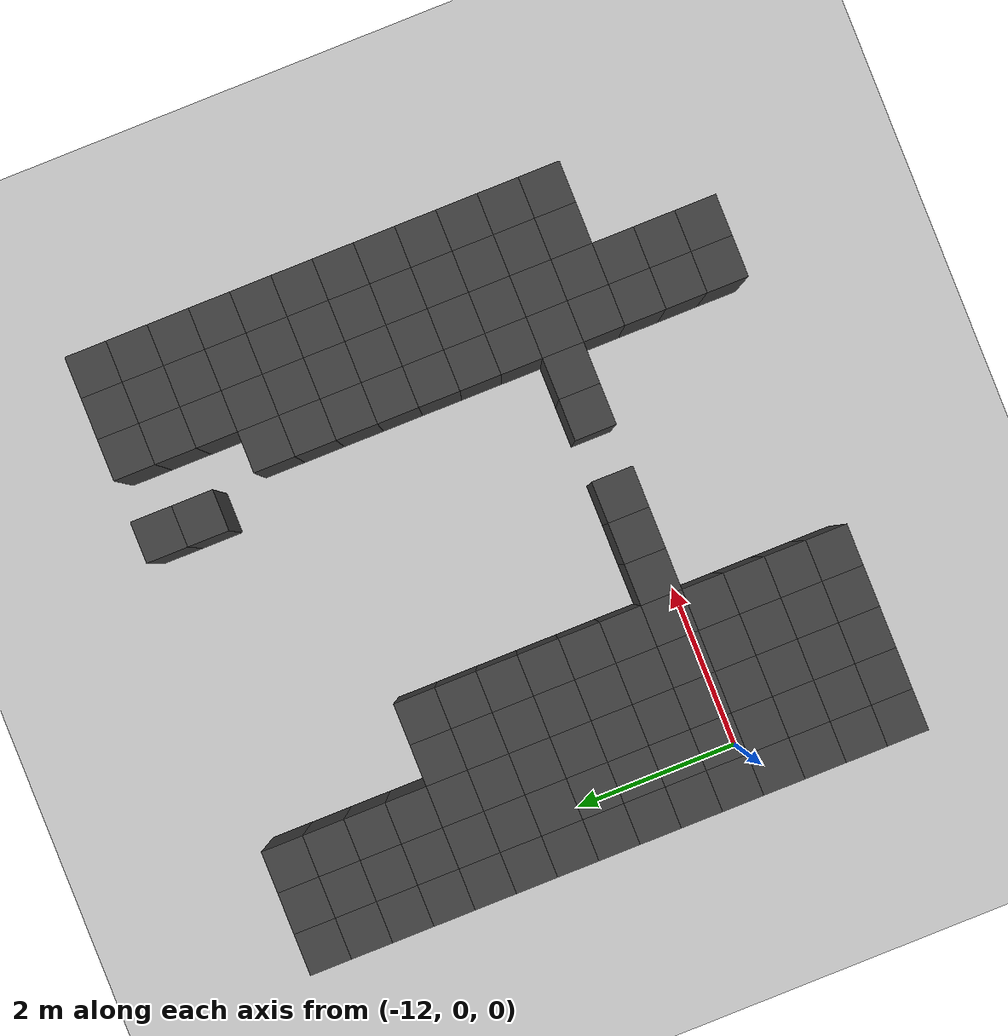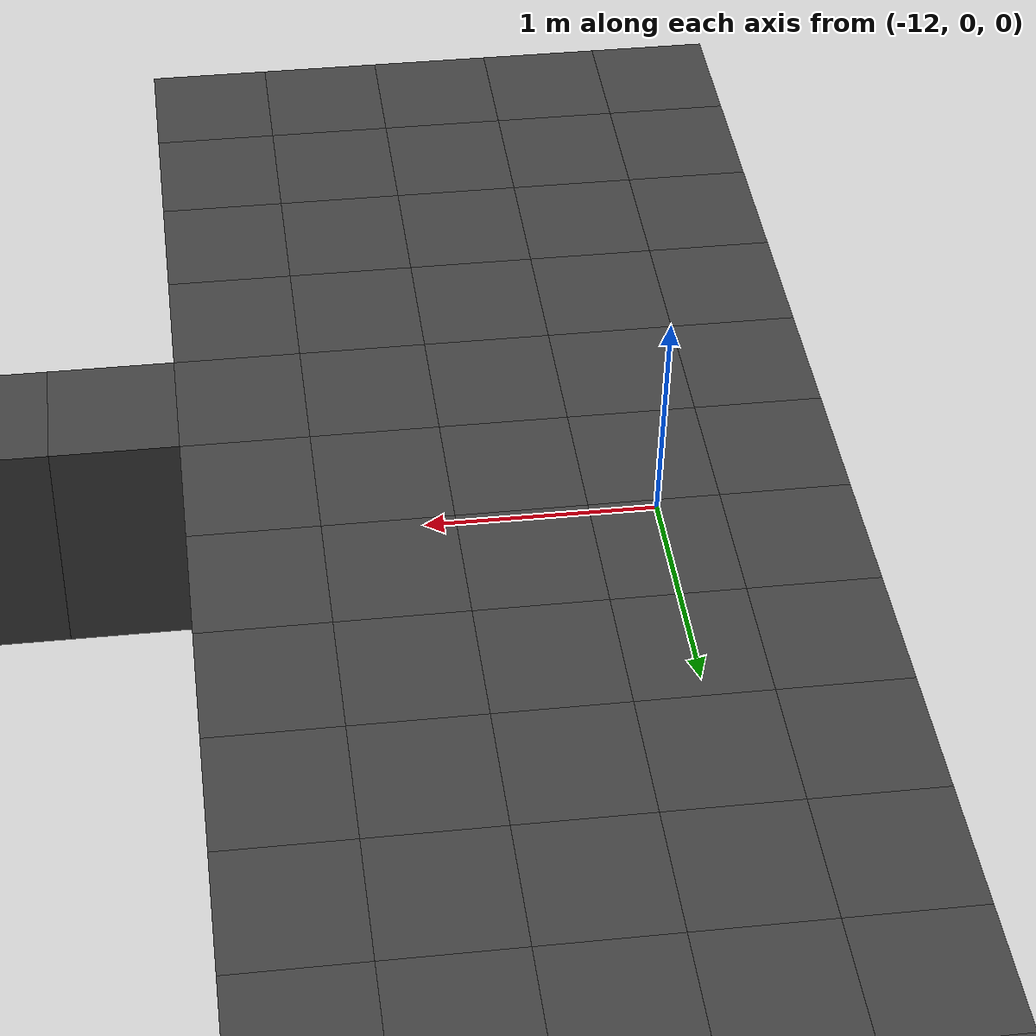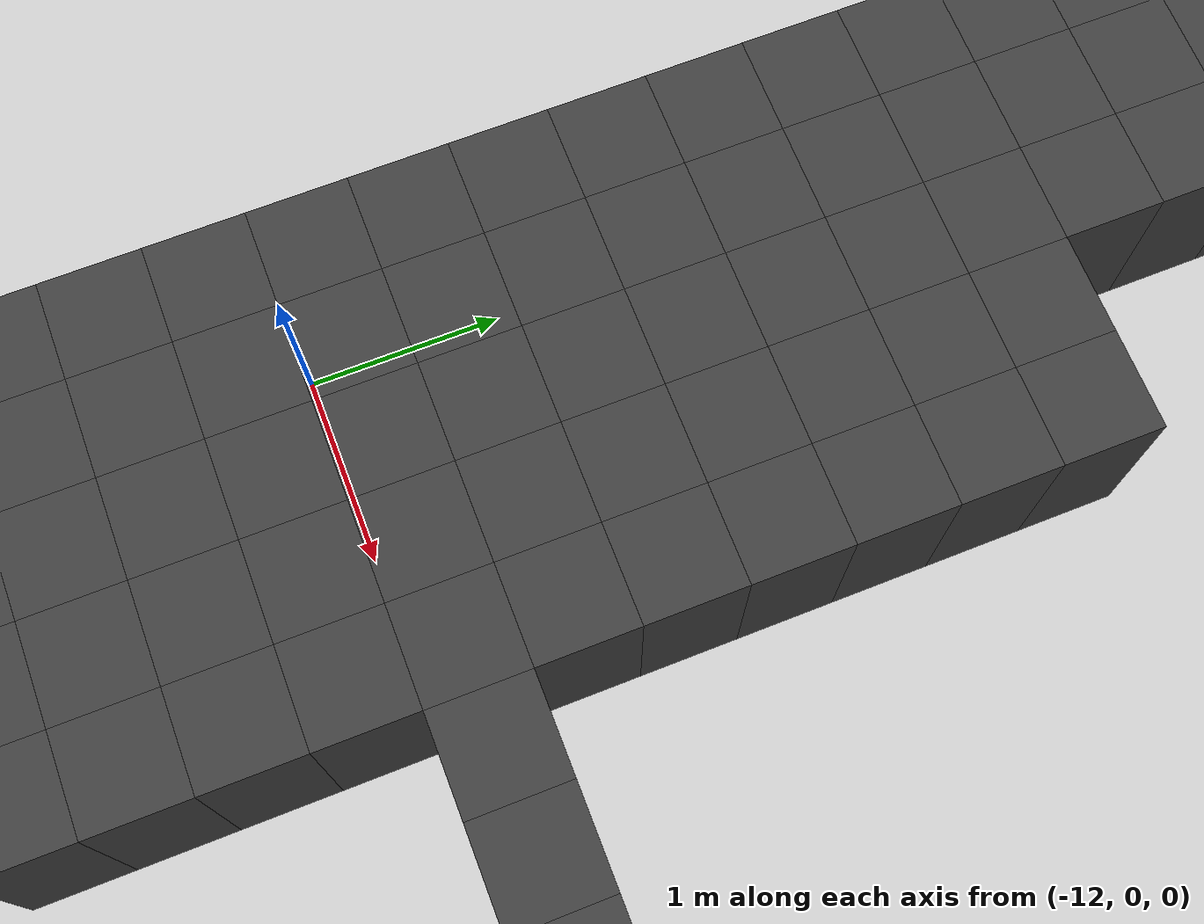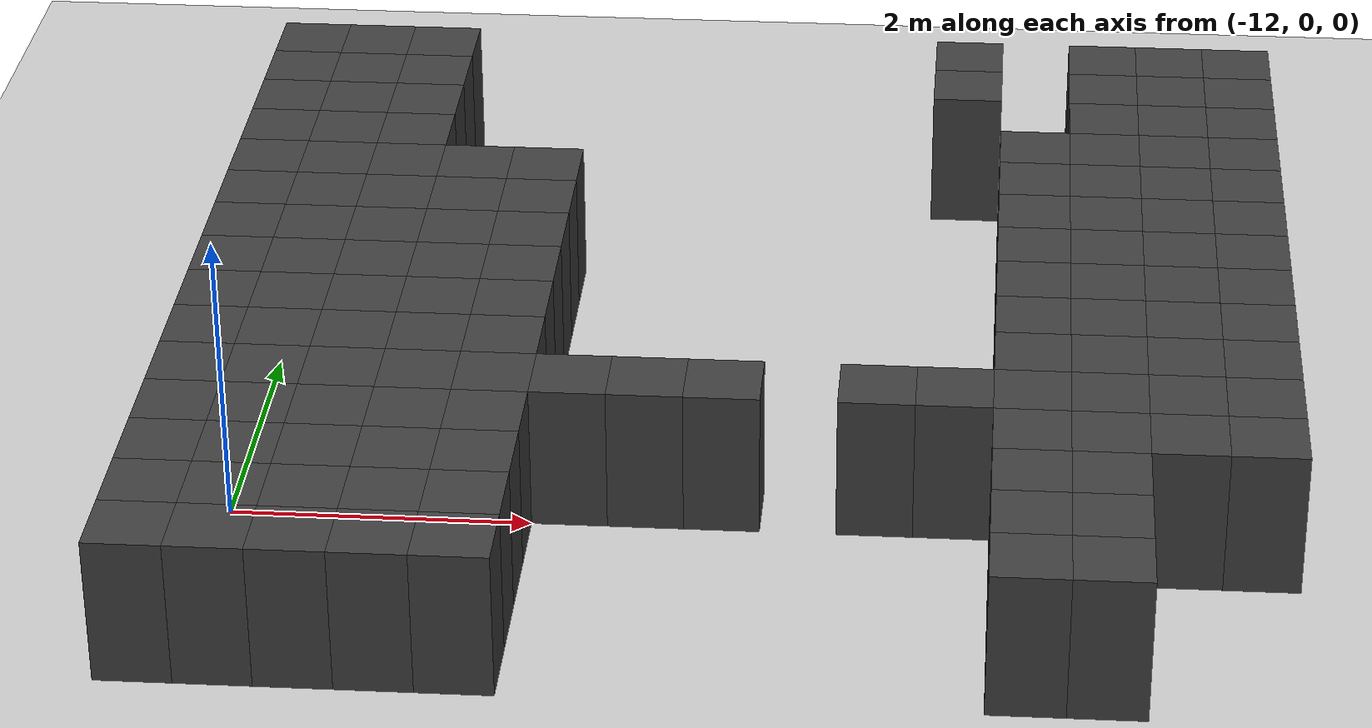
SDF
<sdf version="1.7">
 <world name="map_14495">
  <model name="ground_plane">
   <static>true</static>
   <link name="link">
    <collision name="collision">
     <geometry><plane><normal>0 0 1</normal><size>200 200</size></plane></geometry>
    </collision>
    <visual name="visual">
     <geometry><plane><normal>0 0 1</normal><size>200 200</size></plane></geometry>
     <material><ambient>0.8 0.8 0.8 1</ambient><diffuse>0.8 0.8 0.8 1</diffuse></material>
    </visual>
   </link>
  </model>
  <model name="maze_environment">
   <static>true</static>
   <link name="wall_529">
    <pose>-12.250 5.250 0.500 0 0 0</pose>
    <collision name="col"><geometry><box><size>0.5 0.5 1.0</size></box></geometry></collision>
    <visual name="vis">
     <geometry><box><size>0.5 0.5 1.0</size></box></geometry>
     <material><ambient>0.15 0.15 0.15 1</ambient><diffuse>0.25 0.25 0.25 1</diffuse></material>
    </visual>
   </link>
   <link name="wall_530">
    <pose>-11.750 5.250 0.500 0 0 0</pose>
    <collision name="col"><geometry><box><size>0.5 0.5 1.0</size></box></geometry></collision>
    <visual name="vis">
     <geometry><box><size>0.5 0.5 1.0</size></box></geometry>
     <material><ambient>0.15 0.15 0.15 1</ambient><diffuse>0.25 0.25 0.25 1</diffuse></material>
    </visual>
   </link>
   <link name="wall_531">
    <pose>-11.250 5.250 0.500 0 0 0</pose>
    <collision name="col"><geometry><box><size>0.5 0.5 1.0</size></box></geometry></collision>
    <visual name="vis">
     <geometry><box><size>0.5 0.5 1.0</size></box></geometry>
     <material><ambient>0.15 0.15 0.15 1</ambient><diffuse>0.25 0.25 0.25 1</diffuse></material>
    </visual>
   </link>
   <link name="wall_532">
    <pose>-7.250 5.250 0.500 0 0 0</pose>
    <collision name="col"><geometry><box><size>0.5 0.5 1.0</size></box></geometry></collision>
    <visual name="vis">
     <geometry><box><size>0.5 0.5 1.0</size></box></geometry>
     <material><ambient>0.15 0.15 0.15 1</ambient><diffuse>0.25 0.25 0.25 1</diffuse></material>
    </visual>
   </link>
   <link name="wall_533">
    <pose>-6.250 5.250 0.500 0 0 0</pose>
    <collision name="col"><geometry><box><size>0.5 0.5 1.0</size></box></geometry></collision>
    <visual name="vis">
     <geometry><box><size>0.5 0.5 1.0</size></box></geometry>
     <material><ambient>0.15 0.15 0.15 1</ambient><diffuse>0.25 0.25 0.25 1</diffuse></material>
    </visual>
   </link>
   <link name="wall_534">
    <pose>-5.750 5.250 0.500 0 0 0</pose>
    <collision name="col"><geometry><box><size>0.5 0.5 1.0</size></box></geometry></collision>
    <visual name="vis">
     <geometry><box><size>0.5 0.5 1.0</size></box></geometry>
     <material><ambient>0.15 0.15 0.15 1</ambient><diffuse>0.25 0.25 0.25 1</diffuse></material>
    </visual>
   </link>
   <link name="wall_535">
    <pose>-5.250 5.250 0.500 0 0 0</pose>
    <collision name="col"><geometry><box><size>0.5 0.5 1.0</size></box></geometry></collision>
    <visual name="vis">
     <geometry><box><size>0.5 0.5 1.0</size></box></geometry>
     <material><ambient>0.15 0.15 0.15 1</ambient><diffuse>0.25 0.25 0.25 1</diffuse></material>
    </visual>
   </link>
   <link name="wall_565">
    <pose>-12.250 4.750 0.500 0 0 0</pose>
    <collision name="col"><geometry><box><size>0.5 0.5 1.0</size></box></geometry></collision>
    <visual name="vis">
     <geometry><box><size>0.5 0.5 1.0</size></box></geometry>
     <material><ambient>0.15 0.15 0.15 1</ambient><diffuse>0.25 0.25 0.25 1</diffuse></material>
    </visual>
   </link>
   <link name="wall_566">
    <pose>-11.750 4.750 0.500 0 0 0</pose>
    <collision name="col"><geometry><box><size>0.5 0.5 1.0</size></box></geometry></collision>
    <visual name="vis">
     <geometry><box><size>0.5 0.5 1.0</size></box></geometry>
     <material><ambient>0.15 0.15 0.15 1</ambient><diffuse>0.25 0.25 0.25 1</diffuse></material>
    </visual>
   </link>
   <link name="wall_567">
    <pose>-11.250 4.750 0.500 0 0 0</pose>
    <collision name="col"><geometry><box><size>0.5 0.5 1.0</size></box></geometry></collision>
    <visual name="vis">
     <geometry><box><size>0.5 0.5 1.0</size></box></geometry>
     <material><ambient>0.15 0.15 0.15 1</ambient><diffuse>0.25 0.25 0.25 1</diffuse></material>
    </visual>
   </link>
   <link name="wall_568">
    <pose>-7.250 4.750 0.500 0 0 0</pose>
    <collision name="col"><geometry><box><size>0.5 0.5 1.0</size></box></geometry></collision>
    <visual name="vis">
     <geometry><box><size>0.5 0.5 1.0</size></box></geometry>
     <material><ambient>0.15 0.15 0.15 1</ambient><diffuse>0.25 0.25 0.25 1</diffuse></material>
    </visual>
   </link>
   <link name="wall_569">
    <pose>-6.250 4.750 0.500 0 0 0</pose>
    <collision name="col"><geometry><box><size>0.5 0.5 1.0</size></box></geometry></collision>
    <visual name="vis">
     <geometry><box><size>0.5 0.5 1.0</size></box></geometry>
     <material><ambient>0.15 0.15 0.15 1</ambient><diffuse>0.25 0.25 0.25 1</diffuse></material>
    </visual>
   </link>
   <link name="wall_570">
    <pose>-5.750 4.750 0.500 0 0 0</pose>
    <collision name="col"><geometry><box><size>0.5 0.5 1.0</size></box></geometry></collision>
    <visual name="vis">
     <geometry><box><size>0.5 0.5 1.0</size></box></geometry>
     <material><ambient>0.15 0.15 0.15 1</ambient><diffuse>0.25 0.25 0.25 1</diffuse></material>
    </visual>
   </link>
   <link name="wall_571">
    <pose>-5.250 4.750 0.500 0 0 0</pose>
    <collision name="col"><geometry><box><size>0.5 0.5 1.0</size></box></geometry></collision>
    <visual name="vis">
     <geometry><box><size>0.5 0.5 1.0</size></box></geometry>
     <material><ambient>0.15 0.15 0.15 1</ambient><diffuse>0.25 0.25 0.25 1</diffuse></material>
    </visual>
   </link>
   <link name="wall_598">
    <pose>-12.250 4.250 0.500 0 0 0</pose>
    <collision name="col"><geometry><box><size>0.5 0.5 1.0</size></box></geometry></collision>
    <visual name="vis">
     <geometry><box><size>0.5 0.5 1.0</size></box></geometry>
     <material><ambient>0.15 0.15 0.15 1</ambient><diffuse>0.25 0.25 0.25 1</diffuse></material>
    </visual>
   </link>
   <link name="wall_599">
    <pose>-11.750 4.250 0.500 0 0 0</pose>
    <collision name="col"><geometry><box><size>0.5 0.5 1.0</size></box></geometry></collision>
    <visual name="vis">
     <geometry><box><size>0.5 0.5 1.0</size></box></geometry>
     <material><ambient>0.15 0.15 0.15 1</ambient><diffuse>0.25 0.25 0.25 1</diffuse></material>
    </visual>
   </link>
   <link name="wall_600">
    <pose>-11.250 4.250 0.500 0 0 0</pose>
    <collision name="col"><geometry><box><size>0.5 0.5 1.0</size></box></geometry></collision>
    <visual name="vis">
     <geometry><box><size>0.5 0.5 1.0</size></box></geometry>
     <material><ambient>0.15 0.15 0.15 1</ambient><diffuse>0.25 0.25 0.25 1</diffuse></material>
    </visual>
   </link>
   <link name="wall_601">
    <pose>-6.250 4.250 0.500 0 0 0</pose>
    <collision name="col"><geometry><box><size>0.5 0.5 1.0</size></box></geometry></collision>
    <visual name="vis">
     <geometry><box><size>0.5 0.5 1.0</size></box></geometry>
     <material><ambient>0.15 0.15 0.15 1</ambient><diffuse>0.25 0.25 0.25 1</diffuse></material>
    </visual>
   </link>
   <link name="wall_602">
    <pose>-5.750 4.250 0.500 0 0 0</pose>
    <collision name="col"><geometry><box><size>0.5 0.5 1.0</size></box></geometry></collision>
    <visual name="vis">
     <geometry><box><size>0.5 0.5 1.0</size></box></geometry>
     <material><ambient>0.15 0.15 0.15 1</ambient><diffuse>0.25 0.25 0.25 1</diffuse></material>
    </visual>
   </link>
   <link name="wall_603">
    <pose>-5.250 4.250 0.500 0 0 0</pose>
    <collision name="col"><geometry><box><size>0.5 0.5 1.0</size></box></geometry></collision>
    <visual name="vis">
     <geometry><box><size>0.5 0.5 1.0</size></box></geometry>
     <material><ambient>0.15 0.15 0.15 1</ambient><diffuse>0.25 0.25 0.25 1</diffuse></material>
    </visual>
   </link>
   <link name="wall_634">
    <pose>-12.250 3.750 0.500 0 0 0</pose>
    <collision name="col"><geometry><box><size>0.5 0.5 1.0</size></box></geometry></collision>
    <visual name="vis">
     <geometry><box><size>0.5 0.5 1.0</size></box></geometry>
     <material><ambient>0.15 0.15 0.15 1</ambient><diffuse>0.25 0.25 0.25 1</diffuse></material>
    </visual>
   </link>
   <link name="wall_635">
    <pose>-11.750 3.750 0.500 0 0 0</pose>
    <collision name="col"><geometry><box><size>0.5 0.5 1.0</size></box></geometry></collision>
    <visual name="vis">
     <geometry><box><size>0.5 0.5 1.0</size></box></geometry>
     <material><ambient>0.15 0.15 0.15 1</ambient><diffuse>0.25 0.25 0.25 1</diffuse></material>
    </visual>
   </link>
   <link name="wall_636">
    <pose>-11.250 3.750 0.500 0 0 0</pose>
    <collision name="col"><geometry><box><size>0.5 0.5 1.0</size></box></geometry></collision>
    <visual name="vis">
     <geometry><box><size>0.5 0.5 1.0</size></box></geometry>
     <material><ambient>0.15 0.15 0.15 1</ambient><diffuse>0.25 0.25 0.25 1</diffuse></material>
    </visual>
   </link>
   <link name="wall_637">
    <pose>-6.750 3.750 0.500 0 0 0</pose>
    <collision name="col"><geometry><box><size>0.5 0.5 1.0</size></box></geometry></collision>
    <visual name="vis">
     <geometry><box><size>0.5 0.5 1.0</size></box></geometry>
     <material><ambient>0.15 0.15 0.15 1</ambient><diffuse>0.25 0.25 0.25 1</diffuse></material>
    </visual>
   </link>
   <link name="wall_638">
    <pose>-6.250 3.750 0.500 0 0 0</pose>
    <collision name="col"><geometry><box><size>0.5 0.5 1.0</size></box></geometry></collision>
    <visual name="vis">
     <geometry><box><size>0.5 0.5 1.0</size></box></geometry>
     <material><ambient>0.15 0.15 0.15 1</ambient><diffuse>0.25 0.25 0.25 1</diffuse></material>
    </visual>
   </link>
   <link name="wall_639">
    <pose>-5.750 3.750 0.500 0 0 0</pose>
    <collision name="col"><geometry><box><size>0.5 0.5 1.0</size></box></geometry></collision>
    <visual name="vis">
     <geometry><box><size>0.5 0.5 1.0</size></box></geometry>
     <material><ambient>0.15 0.15 0.15 1</ambient><diffuse>0.25 0.25 0.25 1</diffuse></material>
    </visual>
   </link>
   <link name="wall_640">
    <pose>-5.250 3.750 0.500 0 0 0</pose>
    <collision name="col"><geometry><box><size>0.5 0.5 1.0</size></box></geometry></collision>
    <visual name="vis">
     <geometry><box><size>0.5 0.5 1.0</size></box></geometry>
     <material><ambient>0.15 0.15 0.15 1</ambient><diffuse>0.25 0.25 0.25 1</diffuse></material>
    </visual>
   </link>
   <link name="wall_671">
    <pose>-12.250 3.250 0.500 0 0 0</pose>
    <collision name="col"><geometry><box><size>0.5 0.5 1.0</size></box></geometry></collision>
    <visual name="vis">
     <geometry><box><size>0.5 0.5 1.0</size></box></geometry>
     <material><ambient>0.15 0.15 0.15 1</ambient><diffuse>0.25 0.25 0.25 1</diffuse></material>
    </visual>
   </link>
   <link name="wall_672">
    <pose>-11.750 3.250 0.500 0 0 0</pose>
    <collision name="col"><geometry><box><size>0.5 0.5 1.0</size></box></geometry></collision>
    <visual name="vis">
     <geometry><box><size>0.5 0.5 1.0</size></box></geometry>
     <material><ambient>0.15 0.15 0.15 1</ambient><diffuse>0.25 0.25 0.25 1</diffuse></material>
    </visual>
   </link>
   <link name="wall_673">
    <pose>-11.250 3.250 0.500 0 0 0</pose>
    <collision name="col"><geometry><box><size>0.5 0.5 1.0</size></box></geometry></collision>
    <visual name="vis">
     <geometry><box><size>0.5 0.5 1.0</size></box></geometry>
     <material><ambient>0.15 0.15 0.15 1</ambient><diffuse>0.25 0.25 0.25 1</diffuse></material>
    </visual>
   </link>
   <link name="wall_674">
    <pose>-10.750 3.250 0.500 0 0 0</pose>
    <collision name="col"><geometry><box><size>0.5 0.5 1.0</size></box></geometry></collision>
    <visual name="vis">
     <geometry><box><size>0.5 0.5 1.0</size></box></geometry>
     <material><ambient>0.15 0.15 0.15 1</ambient><diffuse>0.25 0.25 0.25 1</diffuse></material>
    </visual>
   </link>
   <link name="wall_675">
    <pose>-10.250 3.250 0.500 0 0 0</pose>
    <collision name="col"><geometry><box><size>0.5 0.5 1.0</size></box></geometry></collision>
    <visual name="vis">
     <geometry><box><size>0.5 0.5 1.0</size></box></geometry>
     <material><ambient>0.15 0.15 0.15 1</ambient><diffuse>0.25 0.25 0.25 1</diffuse></material>
    </visual>
   </link>
   <link name="wall_676">
    <pose>-6.750 3.250 0.500 0 0 0</pose>
    <collision name="col"><geometry><box><size>0.5 0.5 1.0</size></box></geometry></collision>
    <visual name="vis">
     <geometry><box><size>0.5 0.5 1.0</size></box></geometry>
     <material><ambient>0.15 0.15 0.15 1</ambient><diffuse>0.25 0.25 0.25 1</diffuse></material>
    </visual>
   </link>
   <link name="wall_677">
    <pose>-6.250 3.250 0.500 0 0 0</pose>
    <collision name="col"><geometry><box><size>0.5 0.5 1.0</size></box></geometry></collision>
    <visual name="vis">
     <geometry><box><size>0.5 0.5 1.0</size></box></geometry>
     <material><ambient>0.15 0.15 0.15 1</ambient><diffuse>0.25 0.25 0.25 1</diffuse></material>
    </visual>
   </link>
   <link name="wall_678">
    <pose>-5.750 3.250 0.500 0 0 0</pose>
    <collision name="col"><geometry><box><size>0.5 0.5 1.0</size></box></geometry></collision>
    <visual name="vis">
     <geometry><box><size>0.5 0.5 1.0</size></box></geometry>
     <material><ambient>0.15 0.15 0.15 1</ambient><diffuse>0.25 0.25 0.25 1</diffuse></material>
    </visual>
   </link>
   <link name="wall_679">
    <pose>-5.250 3.250 0.500 0 0 0</pose>
    <collision name="col"><geometry><box><size>0.5 0.5 1.0</size></box></geometry></collision>
    <visual name="vis">
     <geometry><box><size>0.5 0.5 1.0</size></box></geometry>
     <material><ambient>0.15 0.15 0.15 1</ambient><diffuse>0.25 0.25 0.25 1</diffuse></material>
    </visual>
   </link>
   <link name="wall_710">
    <pose>-12.250 2.750 0.500 0 0 0</pose>
    <collision name="col"><geometry><box><size>0.5 0.5 1.0</size></box></geometry></collision>
    <visual name="vis">
     <geometry><box><size>0.5 0.5 1.0</size></box></geometry>
     <material><ambient>0.15 0.15 0.15 1</ambient><diffuse>0.25 0.25 0.25 1</diffuse></material>
    </visual>
   </link>
   <link name="wall_711">
    <pose>-11.750 2.750 0.500 0 0 0</pose>
    <collision name="col"><geometry><box><size>0.5 0.5 1.0</size></box></geometry></collision>
    <visual name="vis">
     <geometry><box><size>0.5 0.5 1.0</size></box></geometry>
     <material><ambient>0.15 0.15 0.15 1</ambient><diffuse>0.25 0.25 0.25 1</diffuse></material>
    </visual>
   </link>
   <link name="wall_712">
    <pose>-11.250 2.750 0.500 0 0 0</pose>
    <collision name="col"><geometry><box><size>0.5 0.5 1.0</size></box></geometry></collision>
    <visual name="vis">
     <geometry><box><size>0.5 0.5 1.0</size></box></geometry>
     <material><ambient>0.15 0.15 0.15 1</ambient><diffuse>0.25 0.25 0.25 1</diffuse></material>
    </visual>
   </link>
   <link name="wall_713">
    <pose>-10.750 2.750 0.500 0 0 0</pose>
    <collision name="col"><geometry><box><size>0.5 0.5 1.0</size></box></geometry></collision>
    <visual name="vis">
     <geometry><box><size>0.5 0.5 1.0</size></box></geometry>
     <material><ambient>0.15 0.15 0.15 1</ambient><diffuse>0.25 0.25 0.25 1</diffuse></material>
    </visual>
   </link>
   <link name="wall_714">
    <pose>-10.250 2.750 0.500 0 0 0</pose>
    <collision name="col"><geometry><box><size>0.5 0.5 1.0</size></box></geometry></collision>
    <visual name="vis">
     <geometry><box><size>0.5 0.5 1.0</size></box></geometry>
     <material><ambient>0.15 0.15 0.15 1</ambient><diffuse>0.25 0.25 0.25 1</diffuse></material>
    </visual>
   </link>
   <link name="wall_715">
    <pose>-6.750 2.750 0.500 0 0 0</pose>
    <collision name="col"><geometry><box><size>0.5 0.5 1.0</size></box></geometry></collision>
    <visual name="vis">
     <geometry><box><size>0.5 0.5 1.0</size></box></geometry>
     <material><ambient>0.15 0.15 0.15 1</ambient><diffuse>0.25 0.25 0.25 1</diffuse></material>
    </visual>
   </link>
   <link name="wall_716">
    <pose>-6.250 2.750 0.500 0 0 0</pose>
    <collision name="col"><geometry><box><size>0.5 0.5 1.0</size></box></geometry></collision>
    <visual name="vis">
     <geometry><box><size>0.5 0.5 1.0</size></box></geometry>
     <material><ambient>0.15 0.15 0.15 1</ambient><diffuse>0.25 0.25 0.25 1</diffuse></material>
    </visual>
   </link>
   <link name="wall_717">
    <pose>-5.750 2.750 0.500 0 0 0</pose>
    <collision name="col"><geometry><box><size>0.5 0.5 1.0</size></box></geometry></collision>
    <visual name="vis">
     <geometry><box><size>0.5 0.5 1.0</size></box></geometry>
     <material><ambient>0.15 0.15 0.15 1</ambient><diffuse>0.25 0.25 0.25 1</diffuse></material>
    </visual>
   </link>
   <link name="wall_718">
    <pose>-5.250 2.750 0.500 0 0 0</pose>
    <collision name="col"><geometry><box><size>0.5 0.5 1.0</size></box></geometry></collision>
    <visual name="vis">
     <geometry><box><size>0.5 0.5 1.0</size></box></geometry>
     <material><ambient>0.15 0.15 0.15 1</ambient><diffuse>0.25 0.25 0.25 1</diffuse></material>
    </visual>
   </link>
   <link name="wall_754">
    <pose>-12.250 2.250 0.500 0 0 0</pose>
    <collision name="col"><geometry><box><size>0.5 0.5 1.0</size></box></geometry></collision>
    <visual name="vis">
     <geometry><box><size>0.5 0.5 1.0</size></box></geometry>
     <material><ambient>0.15 0.15 0.15 1</ambient><diffuse>0.25 0.25 0.25 1</diffuse></material>
    </visual>
   </link>
   <link name="wall_755">
    <pose>-11.750 2.250 0.500 0 0 0</pose>
    <collision name="col"><geometry><box><size>0.5 0.5 1.0</size></box></geometry></collision>
    <visual name="vis">
     <geometry><box><size>0.5 0.5 1.0</size></box></geometry>
     <material><ambient>0.15 0.15 0.15 1</ambient><diffuse>0.25 0.25 0.25 1</diffuse></material>
    </visual>
   </link>
   <link name="wall_756">
    <pose>-11.250 2.250 0.500 0 0 0</pose>
    <collision name="col"><geometry><box><size>0.5 0.5 1.0</size></box></geometry></collision>
    <visual name="vis">
     <geometry><box><size>0.5 0.5 1.0</size></box></geometry>
     <material><ambient>0.15 0.15 0.15 1</ambient><diffuse>0.25 0.25 0.25 1</diffuse></material>
    </visual>
   </link>
   <link name="wall_757">
    <pose>-10.750 2.250 0.500 0 0 0</pose>
    <collision name="col"><geometry><box><size>0.5 0.5 1.0</size></box></geometry></collision>
    <visual name="vis">
     <geometry><box><size>0.5 0.5 1.0</size></box></geometry>
     <material><ambient>0.15 0.15 0.15 1</ambient><diffuse>0.25 0.25 0.25 1</diffuse></material>
    </visual>
   </link>
   <link name="wall_758">
    <pose>-10.250 2.250 0.500 0 0 0</pose>
    <collision name="col"><geometry><box><size>0.5 0.5 1.0</size></box></geometry></collision>
    <visual name="vis">
     <geometry><box><size>0.5 0.5 1.0</size></box></geometry>
     <material><ambient>0.15 0.15 0.15 1</ambient><diffuse>0.25 0.25 0.25 1</diffuse></material>
    </visual>
   </link>
   <link name="wall_759">
    <pose>-6.750 2.250 0.500 0 0 0</pose>
    <collision name="col"><geometry><box><size>0.5 0.5 1.0</size></box></geometry></collision>
    <visual name="vis">
     <geometry><box><size>0.5 0.5 1.0</size></box></geometry>
     <material><ambient>0.15 0.15 0.15 1</ambient><diffuse>0.25 0.25 0.25 1</diffuse></material>
    </visual>
   </link>
   <link name="wall_760">
    <pose>-6.250 2.250 0.500 0 0 0</pose>
    <collision name="col"><geometry><box><size>0.5 0.5 1.0</size></box></geometry></collision>
    <visual name="vis">
     <geometry><box><size>0.5 0.5 1.0</size></box></geometry>
     <material><ambient>0.15 0.15 0.15 1</ambient><diffuse>0.25 0.25 0.25 1</diffuse></material>
    </visual>
   </link>
   <link name="wall_761">
    <pose>-5.750 2.250 0.500 0 0 0</pose>
    <collision name="col"><geometry><box><size>0.5 0.5 1.0</size></box></geometry></collision>
    <visual name="vis">
     <geometry><box><size>0.5 0.5 1.0</size></box></geometry>
     <material><ambient>0.15 0.15 0.15 1</ambient><diffuse>0.25 0.25 0.25 1</diffuse></material>
    </visual>
   </link>
   <link name="wall_762">
    <pose>-5.250 2.250 0.500 0 0 0</pose>
    <collision name="col"><geometry><box><size>0.5 0.5 1.0</size></box></geometry></collision>
    <visual name="vis">
     <geometry><box><size>0.5 0.5 1.0</size></box></geometry>
     <material><ambient>0.15 0.15 0.15 1</ambient><diffuse>0.25 0.25 0.25 1</diffuse></material>
    </visual>
   </link>
   <link name="wall_798">
    <pose>-12.250 1.750 0.500 0 0 0</pose>
    <collision name="col"><geometry><box><size>0.5 0.5 1.0</size></box></geometry></collision>
    <visual name="vis">
     <geometry><box><size>0.5 0.5 1.0</size></box></geometry>
     <material><ambient>0.15 0.15 0.15 1</ambient><diffuse>0.25 0.25 0.25 1</diffuse></material>
    </visual>
   </link>
   <link name="wall_799">
    <pose>-11.750 1.750 0.500 0 0 0</pose>
    <collision name="col"><geometry><box><size>0.5 0.5 1.0</size></box></geometry></collision>
    <visual name="vis">
     <geometry><box><size>0.5 0.5 1.0</size></box></geometry>
     <material><ambient>0.15 0.15 0.15 1</ambient><diffuse>0.25 0.25 0.25 1</diffuse></material>
    </visual>
   </link>
   <link name="wall_800">
    <pose>-11.250 1.750 0.500 0 0 0</pose>
    <collision name="col"><geometry><box><size>0.5 0.5 1.0</size></box></geometry></collision>
    <visual name="vis">
     <geometry><box><size>0.5 0.5 1.0</size></box></geometry>
     <material><ambient>0.15 0.15 0.15 1</ambient><diffuse>0.25 0.25 0.25 1</diffuse></material>
    </visual>
   </link>
   <link name="wall_801">
    <pose>-10.750 1.750 0.500 0 0 0</pose>
    <collision name="col"><geometry><box><size>0.5 0.5 1.0</size></box></geometry></collision>
    <visual name="vis">
     <geometry><box><size>0.5 0.5 1.0</size></box></geometry>
     <material><ambient>0.15 0.15 0.15 1</ambient><diffuse>0.25 0.25 0.25 1</diffuse></material>
    </visual>
   </link>
   <link name="wall_802">
    <pose>-10.250 1.750 0.500 0 0 0</pose>
    <collision name="col"><geometry><box><size>0.5 0.5 1.0</size></box></geometry></collision>
    <visual name="vis">
     <geometry><box><size>0.5 0.5 1.0</size></box></geometry>
     <material><ambient>0.15 0.15 0.15 1</ambient><diffuse>0.25 0.25 0.25 1</diffuse></material>
    </visual>
   </link>
   <link name="wall_803">
    <pose>-6.750 1.750 0.500 0 0 0</pose>
    <collision name="col"><geometry><box><size>0.5 0.5 1.0</size></box></geometry></collision>
    <visual name="vis">
     <geometry><box><size>0.5 0.5 1.0</size></box></geometry>
     <material><ambient>0.15 0.15 0.15 1</ambient><diffuse>0.25 0.25 0.25 1</diffuse></material>
    </visual>
   </link>
   <link name="wall_804">
    <pose>-6.250 1.750 0.500 0 0 0</pose>
    <collision name="col"><geometry><box><size>0.5 0.5 1.0</size></box></geometry></collision>
    <visual name="vis">
     <geometry><box><size>0.5 0.5 1.0</size></box></geometry>
     <material><ambient>0.15 0.15 0.15 1</ambient><diffuse>0.25 0.25 0.25 1</diffuse></material>
    </visual>
   </link>
   <link name="wall_805">
    <pose>-5.750 1.750 0.500 0 0 0</pose>
    <collision name="col"><geometry><box><size>0.5 0.5 1.0</size></box></geometry></collision>
    <visual name="vis">
     <geometry><box><size>0.5 0.5 1.0</size></box></geometry>
     <material><ambient>0.15 0.15 0.15 1</ambient><diffuse>0.25 0.25 0.25 1</diffuse></material>
    </visual>
   </link>
   <link name="wall_806">
    <pose>-5.250 1.750 0.500 0 0 0</pose>
    <collision name="col"><geometry><box><size>0.5 0.5 1.0</size></box></geometry></collision>
    <visual name="vis">
     <geometry><box><size>0.5 0.5 1.0</size></box></geometry>
     <material><ambient>0.15 0.15 0.15 1</ambient><diffuse>0.25 0.25 0.25 1</diffuse></material>
    </visual>
   </link>
   <link name="wall_832">
    <pose>-12.250 1.250 0.500 0 0 0</pose>
    <collision name="col"><geometry><box><size>0.5 0.5 1.0</size></box></geometry></collision>
    <visual name="vis">
     <geometry><box><size>0.5 0.5 1.0</size></box></geometry>
     <material><ambient>0.15 0.15 0.15 1</ambient><diffuse>0.25 0.25 0.25 1</diffuse></material>
    </visual>
   </link>
   <link name="wall_833">
    <pose>-11.750 1.250 0.500 0 0 0</pose>
    <collision name="col"><geometry><box><size>0.5 0.5 1.0</size></box></geometry></collision>
    <visual name="vis">
     <geometry><box><size>0.5 0.5 1.0</size></box></geometry>
     <material><ambient>0.15 0.15 0.15 1</ambient><diffuse>0.25 0.25 0.25 1</diffuse></material>
    </visual>
   </link>
   <link name="wall_834">
    <pose>-11.250 1.250 0.500 0 0 0</pose>
    <collision name="col"><geometry><box><size>0.5 0.5 1.0</size></box></geometry></collision>
    <visual name="vis">
     <geometry><box><size>0.5 0.5 1.0</size></box></geometry>
     <material><ambient>0.15 0.15 0.15 1</ambient><diffuse>0.25 0.25 0.25 1</diffuse></material>
    </visual>
   </link>
   <link name="wall_835">
    <pose>-10.750 1.250 0.500 0 0 0</pose>
    <collision name="col"><geometry><box><size>0.5 0.5 1.0</size></box></geometry></collision>
    <visual name="vis">
     <geometry><box><size>0.5 0.5 1.0</size></box></geometry>
     <material><ambient>0.15 0.15 0.15 1</ambient><diffuse>0.25 0.25 0.25 1</diffuse></material>
    </visual>
   </link>
   <link name="wall_836">
    <pose>-10.250 1.250 0.500 0 0 0</pose>
    <collision name="col"><geometry><box><size>0.5 0.5 1.0</size></box></geometry></collision>
    <visual name="vis">
     <geometry><box><size>0.5 0.5 1.0</size></box></geometry>
     <material><ambient>0.15 0.15 0.15 1</ambient><diffuse>0.25 0.25 0.25 1</diffuse></material>
    </visual>
   </link>
   <link name="wall_837">
    <pose>-6.750 1.250 0.500 0 0 0</pose>
    <collision name="col"><geometry><box><size>0.5 0.5 1.0</size></box></geometry></collision>
    <visual name="vis">
     <geometry><box><size>0.5 0.5 1.0</size></box></geometry>
     <material><ambient>0.15 0.15 0.15 1</ambient><diffuse>0.25 0.25 0.25 1</diffuse></material>
    </visual>
   </link>
   <link name="wall_838">
    <pose>-6.250 1.250 0.500 0 0 0</pose>
    <collision name="col"><geometry><box><size>0.5 0.5 1.0</size></box></geometry></collision>
    <visual name="vis">
     <geometry><box><size>0.5 0.5 1.0</size></box></geometry>
     <material><ambient>0.15 0.15 0.15 1</ambient><diffuse>0.25 0.25 0.25 1</diffuse></material>
    </visual>
   </link>
   <link name="wall_839">
    <pose>-5.750 1.250 0.500 0 0 0</pose>
    <collision name="col"><geometry><box><size>0.5 0.5 1.0</size></box></geometry></collision>
    <visual name="vis">
     <geometry><box><size>0.5 0.5 1.0</size></box></geometry>
     <material><ambient>0.15 0.15 0.15 1</ambient><diffuse>0.25 0.25 0.25 1</diffuse></material>
    </visual>
   </link>
   <link name="wall_840">
    <pose>-5.250 1.250 0.500 0 0 0</pose>
    <collision name="col"><geometry><box><size>0.5 0.5 1.0</size></box></geometry></collision>
    <visual name="vis">
     <geometry><box><size>0.5 0.5 1.0</size></box></geometry>
     <material><ambient>0.15 0.15 0.15 1</ambient><diffuse>0.25 0.25 0.25 1</diffuse></material>
    </visual>
   </link>
   <link name="wall_866">
    <pose>-12.250 0.750 0.500 0 0 0</pose>
    <collision name="col"><geometry><box><size>0.5 0.5 1.0</size></box></geometry></collision>
    <visual name="vis">
     <geometry><box><size>0.5 0.5 1.0</size></box></geometry>
     <material><ambient>0.15 0.15 0.15 1</ambient><diffuse>0.25 0.25 0.25 1</diffuse></material>
    </visual>
   </link>
   <link name="wall_867">
    <pose>-11.750 0.750 0.500 0 0 0</pose>
    <collision name="col"><geometry><box><size>0.5 0.5 1.0</size></box></geometry></collision>
    <visual name="vis">
     <geometry><box><size>0.5 0.5 1.0</size></box></geometry>
     <material><ambient>0.15 0.15 0.15 1</ambient><diffuse>0.25 0.25 0.25 1</diffuse></material>
    </visual>
   </link>
   <link name="wall_868">
    <pose>-11.250 0.750 0.500 0 0 0</pose>
    <collision name="col"><geometry><box><size>0.5 0.5 1.0</size></box></geometry></collision>
    <visual name="vis">
     <geometry><box><size>0.5 0.5 1.0</size></box></geometry>
     <material><ambient>0.15 0.15 0.15 1</ambient><diffuse>0.25 0.25 0.25 1</diffuse></material>
    </visual>
   </link>
   <link name="wall_869">
    <pose>-10.750 0.750 0.500 0 0 0</pose>
    <collision name="col"><geometry><box><size>0.5 0.5 1.0</size></box></geometry></collision>
    <visual name="vis">
     <geometry><box><size>0.5 0.5 1.0</size></box></geometry>
     <material><ambient>0.15 0.15 0.15 1</ambient><diffuse>0.25 0.25 0.25 1</diffuse></material>
    </visual>
   </link>
   <link name="wall_870">
    <pose>-10.250 0.750 0.500 0 0 0</pose>
    <collision name="col"><geometry><box><size>0.5 0.5 1.0</size></box></geometry></collision>
    <visual name="vis">
     <geometry><box><size>0.5 0.5 1.0</size></box></geometry>
     <material><ambient>0.15 0.15 0.15 1</ambient><diffuse>0.25 0.25 0.25 1</diffuse></material>
    </visual>
   </link>
   <link name="wall_871">
    <pose>-6.750 0.750 0.500 0 0 0</pose>
    <collision name="col"><geometry><box><size>0.5 0.5 1.0</size></box></geometry></collision>
    <visual name="vis">
     <geometry><box><size>0.5 0.5 1.0</size></box></geometry>
     <material><ambient>0.15 0.15 0.15 1</ambient><diffuse>0.25 0.25 0.25 1</diffuse></material>
    </visual>
   </link>
   <link name="wall_872">
    <pose>-6.250 0.750 0.500 0 0 0</pose>
    <collision name="col"><geometry><box><size>0.5 0.5 1.0</size></box></geometry></collision>
    <visual name="vis">
     <geometry><box><size>0.5 0.5 1.0</size></box></geometry>
     <material><ambient>0.15 0.15 0.15 1</ambient><diffuse>0.25 0.25 0.25 1</diffuse></material>
    </visual>
   </link>
   <link name="wall_873">
    <pose>-5.750 0.750 0.500 0 0 0</pose>
    <collision name="col"><geometry><box><size>0.5 0.5 1.0</size></box></geometry></collision>
    <visual name="vis">
     <geometry><box><size>0.5 0.5 1.0</size></box></geometry>
     <material><ambient>0.15 0.15 0.15 1</ambient><diffuse>0.25 0.25 0.25 1</diffuse></material>
    </visual>
   </link>
   <link name="wall_874">
    <pose>-5.250 0.750 0.500 0 0 0</pose>
    <collision name="col"><geometry><box><size>0.5 0.5 1.0</size></box></geometry></collision>
    <visual name="vis">
     <geometry><box><size>0.5 0.5 1.0</size></box></geometry>
     <material><ambient>0.15 0.15 0.15 1</ambient><diffuse>0.25 0.25 0.25 1</diffuse></material>
    </visual>
   </link>
   <link name="wall_900">
    <pose>-12.250 0.250 0.500 0 0 0</pose>
    <collision name="col"><geometry><box><size>0.5 0.5 1.0</size></box></geometry></collision>
    <visual name="vis">
     <geometry><box><size>0.5 0.5 1.0</size></box></geometry>
     <material><ambient>0.15 0.15 0.15 1</ambient><diffuse>0.25 0.25 0.25 1</diffuse></material>
    </visual>
   </link>
   <link name="wall_901">
    <pose>-11.750 0.250 0.500 0 0 0</pose>
    <collision name="col"><geometry><box><size>0.5 0.5 1.0</size></box></geometry></collision>
    <visual name="vis">
     <geometry><box><size>0.5 0.5 1.0</size></box></geometry>
     <material><ambient>0.15 0.15 0.15 1</ambient><diffuse>0.25 0.25 0.25 1</diffuse></material>
    </visual>
   </link>
   <link name="wall_902">
    <pose>-11.250 0.250 0.500 0 0 0</pose>
    <collision name="col"><geometry><box><size>0.5 0.5 1.0</size></box></geometry></collision>
    <visual name="vis">
     <geometry><box><size>0.5 0.5 1.0</size></box></geometry>
     <material><ambient>0.15 0.15 0.15 1</ambient><diffuse>0.25 0.25 0.25 1</diffuse></material>
    </visual>
   </link>
   <link name="wall_903">
    <pose>-10.750 0.250 0.500 0 0 0</pose>
    <collision name="col"><geometry><box><size>0.5 0.5 1.0</size></box></geometry></collision>
    <visual name="vis">
     <geometry><box><size>0.5 0.5 1.0</size></box></geometry>
     <material><ambient>0.15 0.15 0.15 1</ambient><diffuse>0.25 0.25 0.25 1</diffuse></material>
    </visual>
   </link>
   <link name="wall_904">
    <pose>-10.250 0.250 0.500 0 0 0</pose>
    <collision name="col"><geometry><box><size>0.5 0.5 1.0</size></box></geometry></collision>
    <visual name="vis">
     <geometry><box><size>0.5 0.5 1.0</size></box></geometry>
     <material><ambient>0.15 0.15 0.15 1</ambient><diffuse>0.25 0.25 0.25 1</diffuse></material>
    </visual>
   </link>
   <link name="wall_905">
    <pose>-9.750 0.250 0.500 0 0 0</pose>
    <collision name="col"><geometry><box><size>0.5 0.5 1.0</size></box></geometry></collision>
    <visual name="vis">
     <geometry><box><size>0.5 0.5 1.0</size></box></geometry>
     <material><ambient>0.15 0.15 0.15 1</ambient><diffuse>0.25 0.25 0.25 1</diffuse></material>
    </visual>
   </link>
   <link name="wall_906">
    <pose>-9.250 0.250 0.500 0 0 0</pose>
    <collision name="col"><geometry><box><size>0.5 0.5 1.0</size></box></geometry></collision>
    <visual name="vis">
     <geometry><box><size>0.5 0.5 1.0</size></box></geometry>
     <material><ambient>0.15 0.15 0.15 1</ambient><diffuse>0.25 0.25 0.25 1</diffuse></material>
    </visual>
   </link>
   <link name="wall_907">
    <pose>-8.750 0.250 0.500 0 0 0</pose>
    <collision name="col"><geometry><box><size>0.5 0.5 1.0</size></box></geometry></collision>
    <visual name="vis">
     <geometry><box><size>0.5 0.5 1.0</size></box></geometry>
     <material><ambient>0.15 0.15 0.15 1</ambient><diffuse>0.25 0.25 0.25 1</diffuse></material>
    </visual>
   </link>
   <link name="wall_908">
    <pose>-7.750 0.250 0.500 0 0 0</pose>
    <collision name="col"><geometry><box><size>0.5 0.5 1.0</size></box></geometry></collision>
    <visual name="vis">
     <geometry><box><size>0.5 0.5 1.0</size></box></geometry>
     <material><ambient>0.15 0.15 0.15 1</ambient><diffuse>0.25 0.25 0.25 1</diffuse></material>
    </visual>
   </link>
   <link name="wall_909">
    <pose>-7.250 0.250 0.500 0 0 0</pose>
    <collision name="col"><geometry><box><size>0.5 0.5 1.0</size></box></geometry></collision>
    <visual name="vis">
     <geometry><box><size>0.5 0.5 1.0</size></box></geometry>
     <material><ambient>0.15 0.15 0.15 1</ambient><diffuse>0.25 0.25 0.25 1</diffuse></material>
    </visual>
   </link>
   <link name="wall_910">
    <pose>-6.750 0.250 0.500 0 0 0</pose>
    <collision name="col"><geometry><box><size>0.5 0.5 1.0</size></box></geometry></collision>
    <visual name="vis">
     <geometry><box><size>0.5 0.5 1.0</size></box></geometry>
     <material><ambient>0.15 0.15 0.15 1</ambient><diffuse>0.25 0.25 0.25 1</diffuse></material>
    </visual>
   </link>
   <link name="wall_911">
    <pose>-6.250 0.250 0.500 0 0 0</pose>
    <collision name="col"><geometry><box><size>0.5 0.5 1.0</size></box></geometry></collision>
    <visual name="vis">
     <geometry><box><size>0.5 0.5 1.0</size></box></geometry>
     <material><ambient>0.15 0.15 0.15 1</ambient><diffuse>0.25 0.25 0.25 1</diffuse></material>
    </visual>
   </link>
   <link name="wall_912">
    <pose>-5.750 0.250 0.500 0 0 0</pose>
    <collision name="col"><geometry><box><size>0.5 0.5 1.0</size></box></geometry></collision>
    <visual name="vis">
     <geometry><box><size>0.5 0.5 1.0</size></box></geometry>
     <material><ambient>0.15 0.15 0.15 1</ambient><diffuse>0.25 0.25 0.25 1</diffuse></material>
    </visual>
   </link>
   <link name="wall_913">
    <pose>-5.250 0.250 0.500 0 0 0</pose>
    <collision name="col"><geometry><box><size>0.5 0.5 1.0</size></box></geometry></collision>
    <visual name="vis">
     <geometry><box><size>0.5 0.5 1.0</size></box></geometry>
     <material><ambient>0.15 0.15 0.15 1</ambient><diffuse>0.25 0.25 0.25 1</diffuse></material>
    </visual>
   </link>
   <link name="wall_939">
    <pose>-12.250 -0.250 0.500 0 0 0</pose>
    <collision name="col"><geometry><box><size>0.5 0.5 1.0</size></box></geometry></collision>
    <visual name="vis">
     <geometry><box><size>0.5 0.5 1.0</size></box></geometry>
     <material><ambient>0.15 0.15 0.15 1</ambient><diffuse>0.25 0.25 0.25 1</diffuse></material>
    </visual>
   </link>
   <link name="wall_940">
    <pose>-11.750 -0.250 0.500 0 0 0</pose>
    <collision name="col"><geometry><box><size>0.5 0.5 1.0</size></box></geometry></collision>
    <visual name="vis">
     <geometry><box><size>0.5 0.5 1.0</size></box></geometry>
     <material><ambient>0.15 0.15 0.15 1</ambient><diffuse>0.25 0.25 0.25 1</diffuse></material>
    </visual>
   </link>
   <link name="wall_941">
    <pose>-11.250 -0.250 0.500 0 0 0</pose>
    <collision name="col"><geometry><box><size>0.5 0.5 1.0</size></box></geometry></collision>
    <visual name="vis">
     <geometry><box><size>0.5 0.5 1.0</size></box></geometry>
     <material><ambient>0.15 0.15 0.15 1</ambient><diffuse>0.25 0.25 0.25 1</diffuse></material>
    </visual>
   </link>
   <link name="wall_942">
    <pose>-10.750 -0.250 0.500 0 0 0</pose>
    <collision name="col"><geometry><box><size>0.5 0.5 1.0</size></box></geometry></collision>
    <visual name="vis">
     <geometry><box><size>0.5 0.5 1.0</size></box></geometry>
     <material><ambient>0.15 0.15 0.15 1</ambient><diffuse>0.25 0.25 0.25 1</diffuse></material>
    </visual>
   </link>
   <link name="wall_943">
    <pose>-10.250 -0.250 0.500 0 0 0</pose>
    <collision name="col"><geometry><box><size>0.5 0.5 1.0</size></box></geometry></collision>
    <visual name="vis">
     <geometry><box><size>0.5 0.5 1.0</size></box></geometry>
     <material><ambient>0.15 0.15 0.15 1</ambient><diffuse>0.25 0.25 0.25 1</diffuse></material>
    </visual>
   </link>
   <link name="wall_944">
    <pose>-6.750 -0.250 0.500 0 0 0</pose>
    <collision name="col"><geometry><box><size>0.5 0.5 1.0</size></box></geometry></collision>
    <visual name="vis">
     <geometry><box><size>0.5 0.5 1.0</size></box></geometry>
     <material><ambient>0.15 0.15 0.15 1</ambient><diffuse>0.25 0.25 0.25 1</diffuse></material>
    </visual>
   </link>
   <link name="wall_945">
    <pose>-6.250 -0.250 0.500 0 0 0</pose>
    <collision name="col"><geometry><box><size>0.5 0.5 1.0</size></box></geometry></collision>
    <visual name="vis">
     <geometry><box><size>0.5 0.5 1.0</size></box></geometry>
     <material><ambient>0.15 0.15 0.15 1</ambient><diffuse>0.25 0.25 0.25 1</diffuse></material>
    </visual>
   </link>
   <link name="wall_946">
    <pose>-5.750 -0.250 0.500 0 0 0</pose>
    <collision name="col"><geometry><box><size>0.5 0.5 1.0</size></box></geometry></collision>
    <visual name="vis">
     <geometry><box><size>0.5 0.5 1.0</size></box></geometry>
     <material><ambient>0.15 0.15 0.15 1</ambient><diffuse>0.25 0.25 0.25 1</diffuse></material>
    </visual>
   </link>
   <link name="wall_947">
    <pose>-5.250 -0.250 0.500 0 0 0</pose>
    <collision name="col"><geometry><box><size>0.5 0.5 1.0</size></box></geometry></collision>
    <visual name="vis">
     <geometry><box><size>0.5 0.5 1.0</size></box></geometry>
     <material><ambient>0.15 0.15 0.15 1</ambient><diffuse>0.25 0.25 0.25 1</diffuse></material>
    </visual>
   </link>
   <link name="wall_968">
    <pose>-12.250 -0.750 0.500 0 0 0</pose>
    <collision name="col"><geometry><box><size>0.5 0.5 1.0</size></box></geometry></collision>
    <visual name="vis">
     <geometry><box><size>0.5 0.5 1.0</size></box></geometry>
     <material><ambient>0.15 0.15 0.15 1</ambient><diffuse>0.25 0.25 0.25 1</diffuse></material>
    </visual>
   </link>
   <link name="wall_969">
    <pose>-11.750 -0.750 0.500 0 0 0</pose>
    <collision name="col"><geometry><box><size>0.5 0.5 1.0</size></box></geometry></collision>
    <visual name="vis">
     <geometry><box><size>0.5 0.5 1.0</size></box></geometry>
     <material><ambient>0.15 0.15 0.15 1</ambient><diffuse>0.25 0.25 0.25 1</diffuse></material>
    </visual>
   </link>
   <link name="wall_970">
    <pose>-11.250 -0.750 0.500 0 0 0</pose>
    <collision name="col"><geometry><box><size>0.5 0.5 1.0</size></box></geometry></collision>
    <visual name="vis">
     <geometry><box><size>0.5 0.5 1.0</size></box></geometry>
     <material><ambient>0.15 0.15 0.15 1</ambient><diffuse>0.25 0.25 0.25 1</diffuse></material>
    </visual>
   </link>
   <link name="wall_971">
    <pose>-10.750 -0.750 0.500 0 0 0</pose>
    <collision name="col"><geometry><box><size>0.5 0.5 1.0</size></box></geometry></collision>
    <visual name="vis">
     <geometry><box><size>0.5 0.5 1.0</size></box></geometry>
     <material><ambient>0.15 0.15 0.15 1</ambient><diffuse>0.25 0.25 0.25 1</diffuse></material>
    </visual>
   </link>
   <link name="wall_972">
    <pose>-10.250 -0.750 0.500 0 0 0</pose>
    <collision name="col"><geometry><box><size>0.5 0.5 1.0</size></box></geometry></collision>
    <visual name="vis">
     <geometry><box><size>0.5 0.5 1.0</size></box></geometry>
     <material><ambient>0.15 0.15 0.15 1</ambient><diffuse>0.25 0.25 0.25 1</diffuse></material>
    </visual>
   </link>
   <link name="wall_973">
    <pose>-6.750 -0.750 0.500 0 0 0</pose>
    <collision name="col"><geometry><box><size>0.5 0.5 1.0</size></box></geometry></collision>
    <visual name="vis">
     <geometry><box><size>0.5 0.5 1.0</size></box></geometry>
     <material><ambient>0.15 0.15 0.15 1</ambient><diffuse>0.25 0.25 0.25 1</diffuse></material>
    </visual>
   </link>
   <link name="wall_974">
    <pose>-6.250 -0.750 0.500 0 0 0</pose>
    <collision name="col"><geometry><box><size>0.5 0.5 1.0</size></box></geometry></collision>
    <visual name="vis">
     <geometry><box><size>0.5 0.5 1.0</size></box></geometry>
     <material><ambient>0.15 0.15 0.15 1</ambient><diffuse>0.25 0.25 0.25 1</diffuse></material>
    </visual>
   </link>
   <link name="wall_994">
    <pose>-12.250 -1.250 0.500 0 0 0</pose>
    <collision name="col"><geometry><box><size>0.5 0.5 1.0</size></box></geometry></collision>
    <visual name="vis">
     <geometry><box><size>0.5 0.5 1.0</size></box></geometry>
     <material><ambient>0.15 0.15 0.15 1</ambient><diffuse>0.25 0.25 0.25 1</diffuse></material>
    </visual>
   </link>
   <link name="wall_995">
    <pose>-11.750 -1.250 0.500 0 0 0</pose>
    <collision name="col"><geometry><box><size>0.5 0.5 1.0</size></box></geometry></collision>
    <visual name="vis">
     <geometry><box><size>0.5 0.5 1.0</size></box></geometry>
     <material><ambient>0.15 0.15 0.15 1</ambient><diffuse>0.25 0.25 0.25 1</diffuse></material>
    </visual>
   </link>
   <link name="wall_996">
    <pose>-11.250 -1.250 0.500 0 0 0</pose>
    <collision name="col"><geometry><box><size>0.5 0.5 1.0</size></box></geometry></collision>
    <visual name="vis">
     <geometry><box><size>0.5 0.5 1.0</size></box></geometry>
     <material><ambient>0.15 0.15 0.15 1</ambient><diffuse>0.25 0.25 0.25 1</diffuse></material>
    </visual>
   </link>
   <link name="wall_997">
    <pose>-10.750 -1.250 0.500 0 0 0</pose>
    <collision name="col"><geometry><box><size>0.5 0.5 1.0</size></box></geometry></collision>
    <visual name="vis">
     <geometry><box><size>0.5 0.5 1.0</size></box></geometry>
     <material><ambient>0.15 0.15 0.15 1</ambient><diffuse>0.25 0.25 0.25 1</diffuse></material>
    </visual>
   </link>
   <link name="wall_998">
    <pose>-10.250 -1.250 0.500 0 0 0</pose>
    <collision name="col"><geometry><box><size>0.5 0.5 1.0</size></box></geometry></collision>
    <visual name="vis">
     <geometry><box><size>0.5 0.5 1.0</size></box></geometry>
     <material><ambient>0.15 0.15 0.15 1</ambient><diffuse>0.25 0.25 0.25 1</diffuse></material>
    </visual>
   </link>
   <link name="wall_999">
    <pose>-6.750 -1.250 0.500 0 0 0</pose>
    <collision name="col"><geometry><box><size>0.5 0.5 1.0</size></box></geometry></collision>
    <visual name="vis">
     <geometry><box><size>0.5 0.5 1.0</size></box></geometry>
     <material><ambient>0.15 0.15 0.15 1</ambient><diffuse>0.25 0.25 0.25 1</diffuse></material>
    </visual>
   </link>
   <link name="wall_1000">
    <pose>-6.250 -1.250 0.500 0 0 0</pose>
    <collision name="col"><geometry><box><size>0.5 0.5 1.0</size></box></geometry></collision>
    <visual name="vis">
     <geometry><box><size>0.5 0.5 1.0</size></box></geometry>
     <material><ambient>0.15 0.15 0.15 1</ambient><diffuse>0.25 0.25 0.25 1</diffuse></material>
    </visual>
   </link>
   <link name="wall_1020">
    <pose>-12.250 -1.750 0.500 0 0 0</pose>
    <collision name="col"><geometry><box><size>0.5 0.5 1.0</size></box></geometry></collision>
    <visual name="vis">
     <geometry><box><size>0.5 0.5 1.0</size></box></geometry>
     <material><ambient>0.15 0.15 0.15 1</ambient><diffuse>0.25 0.25 0.25 1</diffuse></material>
    </visual>
   </link>
   <link name="wall_1021">
    <pose>-11.750 -1.750 0.500 0 0 0</pose>
    <collision name="col"><geometry><box><size>0.5 0.5 1.0</size></box></geometry></collision>
    <visual name="vis">
     <geometry><box><size>0.5 0.5 1.0</size></box></geometry>
     <material><ambient>0.15 0.15 0.15 1</ambient><diffuse>0.25 0.25 0.25 1</diffuse></material>
    </visual>
   </link>
   <link name="wall_1022">
    <pose>-11.250 -1.750 0.500 0 0 0</pose>
    <collision name="col"><geometry><box><size>0.5 0.5 1.0</size></box></geometry></collision>
    <visual name="vis">
     <geometry><box><size>0.5 0.5 1.0</size></box></geometry>
     <material><ambient>0.15 0.15 0.15 1</ambient><diffuse>0.25 0.25 0.25 1</diffuse></material>
    </visual>
   </link>
   <link name="wall_1023">
    <pose>-10.750 -1.750 0.500 0 0 0</pose>
    <collision name="col"><geometry><box><size>0.5 0.5 1.0</size></box></geometry></collision>
    <visual name="vis">
     <geometry><box><size>0.5 0.5 1.0</size></box></geometry>
     <material><ambient>0.15 0.15 0.15 1</ambient><diffuse>0.25 0.25 0.25 1</diffuse></material>
    </visual>
   </link>
   <link name="wall_1024">
    <pose>-10.250 -1.750 0.500 0 0 0</pose>
    <collision name="col"><geometry><box><size>0.5 0.5 1.0</size></box></geometry></collision>
    <visual name="vis">
     <geometry><box><size>0.5 0.5 1.0</size></box></geometry>
     <material><ambient>0.15 0.15 0.15 1</ambient><diffuse>0.25 0.25 0.25 1</diffuse></material>
    </visual>
   </link>
   <link name="wall_1025">
    <pose>-6.750 -1.750 0.500 0 0 0</pose>
    <collision name="col"><geometry><box><size>0.5 0.5 1.0</size></box></geometry></collision>
    <visual name="vis">
     <geometry><box><size>0.5 0.5 1.0</size></box></geometry>
     <material><ambient>0.15 0.15 0.15 1</ambient><diffuse>0.25 0.25 0.25 1</diffuse></material>
    </visual>
   </link>
   <link name="wall_1026">
    <pose>-6.250 -1.750 0.500 0 0 0</pose>
    <collision name="col"><geometry><box><size>0.5 0.5 1.0</size></box></geometry></collision>
    <visual name="vis">
     <geometry><box><size>0.5 0.5 1.0</size></box></geometry>
     <material><ambient>0.15 0.15 0.15 1</ambient><diffuse>0.25 0.25 0.25 1</diffuse></material>
    </visual>
   </link>
  </model>
 </world>
</sdf>
